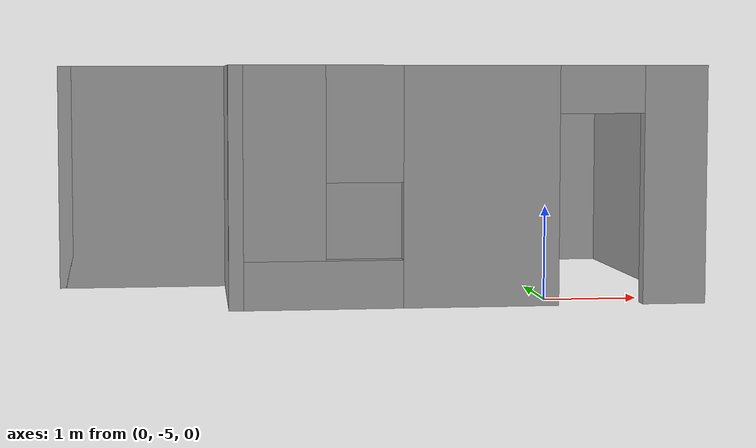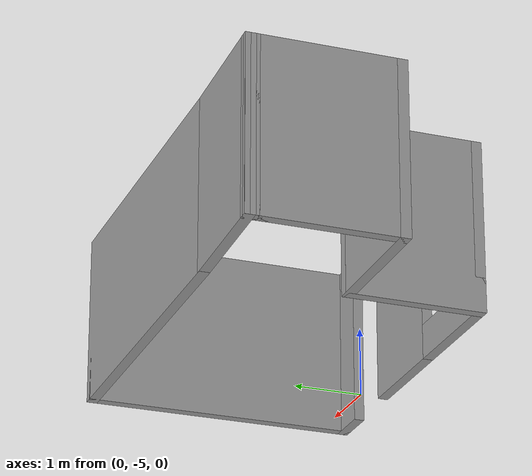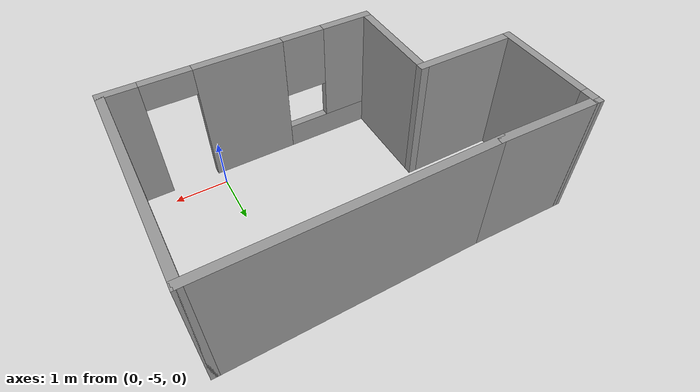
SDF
<?xml version='1.0'?>
<sdf version='1.7'>
  <model name='test_world'>
    <pose>-1.801 -2.7175 0 0 -0 0</pose>
    <link name='Wall_0'>
      <collision name='Wall_0_Collision'>
        <geometry>
          <box>
            <size>5 0.15 2.5</size>
          </box>
        </geometry>
        <pose>0 0 1.25 0 -0 0</pose>
      </collision>
      <visual name='Wall_0_Visual'>
        <pose>0 0 1.25 0 -0 0</pose>
        <geometry>
          <box>
            <size>5 0.15 2.5</size>
          </box>
        </geometry>
        <material>
          <script>
            <uri>file://media/materials/scripts/gazebo.material</uri>
            <name>Gazebo/Grey</name>
          </script>
          <ambient>1 1 1 1</ambient>
        </material>
        <meta>
          <layer>0</layer>
        </meta>
      </visual>
      <pose>0.925999 1.2075 0 0 -0 0</pose>
    </link>
    <link name='Wall_1'>
      <collision name='Wall_1_Collision'>
        <geometry>
          <box>
            <size>4 0.15 2.5</size>
          </box>
        </geometry>
        <pose>0 0 1.25 0 -0 0</pose>
      </collision>
      <visual name='Wall_1_Visual'>
        <pose>0 0 1.25 0 -0 0</pose>
        <geometry>
          <box>
            <size>4 0.15 2.5</size>
          </box>
        </geometry>
        <material>
          <script>
            <uri>file://media/materials/scripts/gazebo.material</uri>
            <name>Gazebo/Grey</name>
          </script>
          <ambient>1 1 1 1</ambient>
        </material>
        <meta>
          <layer>0</layer>
        </meta>
      </visual>
      <pose>3.351 -0.7175 0 0 -0 -1.5708</pose>
    </link>
    <link name='Wall_2'>
      <pose>0.925999 -2.6425 0 0 -0 3.14159</pose>
      <visual name='Wall_2_Visual_0'>
        <pose>-2.16348 0 1.25 0 -0 0</pose>
        <geometry>
          <box>
            <size>0.673038 0.15 2.5</size>
          </box>
        </geometry>
        <material>
          <script>
            <uri>file://media/materials/scripts/gazebo.material</uri>
            <name>Gazebo/Grey</name>
          </script>
          <ambient>1 1 1 1</ambient>
        </material>
        <meta>
          <layer>0</layer>
        </meta>
      </visual>
      <collision name='Wall_2_Collision_0'>
        <geometry>
          <box>
            <size>0.673038 0.15 2.5</size>
          </box>
        </geometry>
        <pose>-2.16348 0 1.25 0 -0 0</pose>
      </collision>
      <visual name='Wall_2_Visual_1'>
        <pose>-0.110167 0 1.25 0 -0 0</pose>
        <geometry>
          <box>
            <size>1.63359 0.15 2.5</size>
          </box>
        </geometry>
        <material>
          <script>
            <uri>file://media/materials/scripts/gazebo.material</uri>
            <name>Gazebo/Grey</name>
          </script>
          <ambient>1 1 1 1</ambient>
        </material>
        <meta>
          <layer>0</layer>
        </meta>
      </visual>
      <collision name='Wall_2_Collision_1'>
        <geometry>
          <box>
            <size>1.63359 0.15 2.5</size>
          </box>
        </geometry>
        <pose>-0.110167 0 1.25 0 -0 0</pose>
      </collision>
      <visual name='Wall_2_Visual_2'>
        <pose>1.60331 0 0.25 0 -0 0</pose>
        <geometry>
          <box>
            <size>1.79337 0.15 0.5</size>
          </box>
        </geometry>
        <material>
          <script>
            <uri>file://media/materials/scripts/gazebo.material</uri>
            <name>Gazebo/Grey</name>
          </script>
          <ambient>1 1 1 1</ambient>
        </material>
        <meta>
          <layer>0</layer>
        </meta>
      </visual>
      <collision name='Wall_2_Collision_2'>
        <geometry>
          <box>
            <size>1.79337 0.15 0.5</size>
          </box>
        </geometry>
        <pose>1.60331 0 0.25 0 -0 0</pose>
      </collision>
      <visual name='Wall_2_Visual_3'>
        <pose>2.00331 0 1.5 0 -0 0</pose>
        <geometry>
          <box>
            <size>0.993373 0.15 2</size>
          </box>
        </geometry>
        <material>
          <script>
            <uri>file://media/materials/scripts/gazebo.material</uri>
            <name>Gazebo/Grey</name>
          </script>
          <ambient>1 1 1 1</ambient>
        </material>
        <meta>
          <layer>0</layer>
        </meta>
      </visual>
      <collision name='Wall_2_Collision_3'>
        <geometry>
          <box>
            <size>0.993373 0.15 2</size>
          </box>
        </geometry>
        <pose>2.00331 0 1.5 0 -0 0</pose>
      </collision>
      <visual name='Wall_2_Visual_4'>
        <pose>1.10663 0 1.9 0 -0 0</pose>
        <geometry>
          <box>
            <size>0.8 0.15 1.2</size>
          </box>
        </geometry>
        <material>
          <script>
            <uri>file://media/materials/scripts/gazebo.material</uri>
            <name>Gazebo/Grey</name>
          </script>
          <ambient>1 1 1 1</ambient>
        </material>
        <meta>
          <layer>0</layer>
        </meta>
      </visual>
      <collision name='Wall_2_Collision_4'>
        <geometry>
          <box>
            <size>0.8 0.15 1.2</size>
          </box>
        </geometry>
        <pose>1.10663 0 1.9 0 -0 0</pose>
      </collision>
      <visual name='Wall_2_Visual_5'>
        <pose>-1.37696 0 2.25 0 -0 0</pose>
        <geometry>
          <box>
            <size>0.9 0.15 0.5</size>
          </box>
        </geometry>
        <material>
          <script>
            <uri>file://media/materials/scripts/gazebo.material</uri>
            <name>Gazebo/Grey</name>
          </script>
          <ambient>1 1 1 1</ambient>
        </material>
        <meta>
          <layer>0</layer>
        </meta>
      </visual>
      <collision name='Wall_2_Collision_5'>
        <geometry>
          <box>
            <size>0.9 0.15 0.5</size>
          </box>
        </geometry>
        <pose>-1.37696 0 2.25 0 -0 0</pose>
      </collision>
    </link>
    <link name='Wall_3'>
      <collision name='Wall_3_Collision'>
        <geometry>
          <box>
            <size>2 0.15 2.5</size>
          </box>
        </geometry>
        <pose>0 0 1.25 0 -0 0</pose>
      </collision>
      <visual name='Wall_3_Visual'>
        <pose>0 0 1.25 0 -0 0</pose>
        <geometry>
          <box>
            <size>2 0.15 2.5</size>
          </box>
        </geometry>
        <material>
          <script>
            <uri>file://media/materials/scripts/gazebo.material</uri>
            <name>Gazebo/Grey</name>
          </script>
          <ambient>1 1 1 1</ambient>
        </material>
        <meta>
          <layer>0</layer>
        </meta>
      </visual>
      <pose>-1.499 -1.7175 0 0 -0 1.5708</pose>
    </link>
    <link name='Wall_4'>
      <collision name='Wall_4_Collision'>
        <geometry>
          <box>
            <size>2 0.15 2.5</size>
          </box>
        </geometry>
        <pose>0 0 1.25 0 -0 0</pose>
      </collision>
      <visual name='Wall_4_Visual'>
        <pose>0 0 1.25 0 -0 0</pose>
        <geometry>
          <box>
            <size>2 0.15 2.5</size>
          </box>
        </geometry>
        <material>
          <script>
            <uri>file://media/materials/scripts/gazebo.material</uri>
            <name>Gazebo/Grey</name>
          </script>
          <ambient>1 1 1 1</ambient>
        </material>
        <meta>
          <layer>0</layer>
        </meta>
      </visual>
      <pose>-2.424 -0.7925 0 0 -0 3.14159</pose>
    </link>
    <link name='Wall_5'>
      <collision name='Wall_5_Collision'>
        <geometry>
          <box>
            <size>2 0.15 2.5</size>
          </box>
        </geometry>
        <pose>0 0 1.25 0 -0 0</pose>
      </collision>
      <visual name='Wall_5_Visual'>
        <pose>0 0 1.25 0 -0 0</pose>
        <geometry>
          <box>
            <size>2 0.15 2.5</size>
          </box>
        </geometry>
        <material>
          <script>
            <uri>file://media/materials/scripts/gazebo.material</uri>
            <name>Gazebo/Grey</name>
          </script>
          <ambient>1 1 1 1</ambient>
        </material>
        <meta>
          <layer>0</layer>
        </meta>
      </visual>
      <pose>-3.349 0.1325 0 0 -0 1.5708</pose>
    </link>
    <link name='Wall_6'>
      <collision name='Wall_6_Collision'>
        <geometry>
          <box>
            <size>0.25 0.15 2.5</size>
          </box>
        </geometry>
        <pose>0 0 1.25 0 -0 0</pose>
      </collision>
      <visual name='Wall_6_Visual'>
        <pose>0 0 1.25 0 -0 0</pose>
        <geometry>
          <box>
            <size>0.25 0.15 2.5</size>
          </box>
        </geometry>
        <material>
          <script>
            <uri>file://media/materials/scripts/gazebo.material</uri>
            <name>Gazebo/Grey</name>
          </script>
          <ambient>1 1 1 1</ambient>
        </material>
        <meta>
          <layer>0</layer>
        </meta>
      </visual>
      <pose>-3.349 1.1075 0 0 -0 1.5708</pose>
    </link>
    <link name='Wall_7'>
      <collision name='Wall_7_Collision'>
        <geometry>
          <box>
            <size>0.25 0.15 2.5</size>
          </box>
        </geometry>
        <pose>0 0 1.25 0 -0 0</pose>
      </collision>
      <visual name='Wall_7_Visual'>
        <pose>0 0 1.25 0 -0 0</pose>
        <geometry>
          <box>
            <size>0.25 0.15 2.5</size>
          </box>
        </geometry>
        <material>
          <script>
            <uri>file://media/materials/scripts/gazebo.material</uri>
            <name>Gazebo/Grey</name>
          </script>
          <ambient>1 1 1 1</ambient>
        </material>
        <meta>
          <layer>0</layer>
        </meta>
      </visual>
      <pose>-3.349 1.2075 0 0 -0 1.5708</pose>
    </link>
    <link name='Wall_8'>
      <collision name='Wall_8_Collision'>
        <geometry>
          <box>
            <size>2.00068 0.15 2.5</size>
          </box>
        </geometry>
        <pose>0 0 1.25 0 -0 0</pose>
      </collision>
      <visual name='Wall_8_Visual'>
        <pose>0 0 1.25 0 -0 0</pose>
        <geometry>
          <box>
            <size>2.00068 0.15 2.5</size>
          </box>
        </geometry>
        <material>
          <script>
            <uri>file://media/materials/scripts/gazebo.material</uri>
            <name>Gazebo/Grey</name>
          </script>
          <ambient>1 1 1 1</ambient>
        </material>
        <meta>
          <layer>0</layer>
        </meta>
      </visual>
      <pose>-2.424 1.2325 0 0 -0 -0.02702</pose>
    </link>
    <static>1</static>
  </model>
</sdf>
